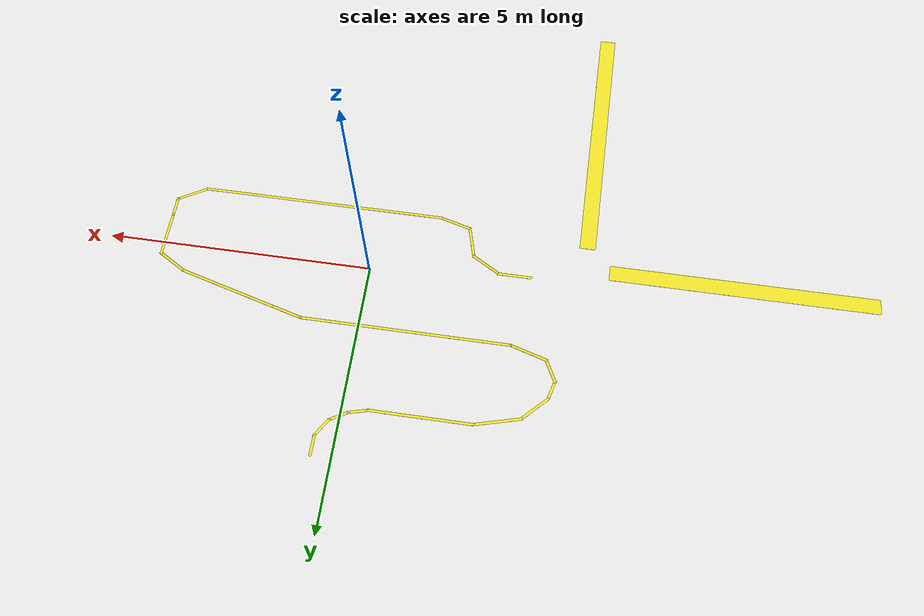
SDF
<?xml version='1.0'?>
<sdf version='1.7'>
  <model name='path'>
    <link name='Line_11'>
      <pose>-4 -6 0 0 0 -1.5708</pose>
      <self_collide>0</self_collide>
      <enable_wind>0</enable_wind>
      <kinematic>0</kinematic>
      <gravity>1</gravity>
      <inertial>
        <mass>1</mass>
        <pose>0 -0.04 0 0 -0 0</pose>
        <inertia>
          <ixx>1</ixx>
          <ixy>0</ixy>
          <ixz>0</ixz>
          <iyy>1</iyy>
          <iyz>0</iyz>
          <izz>1</izz>
        </inertia>
      </inertial>
      <visual name='Line_11_Visual'>
        <pose>-2.5 0 0 0 -0 0</pose>
        <geometry>
          <box>
            <size>5 0.3 0.001</size>
          </box>
        </geometry>
        <material>
          <script>
            <uri>file://media/materials/scripts/gazebo.material</uri>
            <name>Gazebo/Yellow</name>
          </script>
          <shader type='pixel'>
            <normal_map>__default__</normal_map>
          </shader>
          <ambient>1 1 0 1</ambient>
          <diffuse>1 1 0 1</diffuse>
          <emissive>0 0 0 1</emissive>
        </material>
        <meta>
          <layer>0</layer>
        </meta>
        <transparency>0</transparency>
        <cast_shadows>1</cast_shadows>
      </visual>
      <collision name='Line_11_Collision'>
        <laser_retro>0</laser_retro>
        <max_contacts>10</max_contacts>
        <pose>0 0 0.0015 0 -0 0</pose>
        <geometry>
          <box>
            <size>0.05 2.5 1</size>
          </box>
        </geometry>
        <surface>
          <friction>
            <ode>
              <mu>100</mu>
              <mu2>50</mu2>
              <fdir1>0 0 0</fdir1>
              <slip1>0</slip1>
              <slip2>0</slip2>
            </ode>
            <torsional>
              <coefficient>1</coefficient>
              <patch_radius>0</patch_radius>
              <surface_radius>0</surface_radius>
              <use_patch_radius>1</use_patch_radius>
              <ode>
                <slip>0</slip>
              </ode>
            </torsional>
          </friction>
          <bounce>
            <restitution_coefficient>0</restitution_coefficient>
            <threshold>1e+06</threshold>
          </bounce>
          <contact>
            <collide_without_contact>0</collide_without_contact>
            <collide_without_contact_bitmask>1</collide_without_contact_bitmask>
            <collide_bitmask>1</collide_bitmask>
            <ode>
              <soft_cfm>0</soft_cfm>
              <soft_erp>0.2</soft_erp>
              <kp>1e+13</kp>
              <kd>1</kd>
              <max_vel>0.01</max_vel>
              <min_depth>0</min_depth>
            </ode>
            <bullet>
              <split_impulse>1</split_impulse>
              <split_impulse_penetration_threshold>-0.01</split_impulse_penetration_threshold>
              <soft_cfm>0</soft_cfm>
              <soft_erp>0.2</soft_erp>
              <kp>1e+13</kp>
              <kd>1</kd>
            </bullet>
          </contact>
        </surface>
      </collision>
    </link>
    <link name='Line_13'>
      <pose>-4.45 -0.55 0 0 -0 0</pose>
      <self_collide>0</self_collide>
      <enable_wind>0</enable_wind>
      <kinematic>0</kinematic>
      <gravity>1</gravity>
      <inertial>
        <mass>1</mass>
        <pose>0 0 0 0 -0 0</pose>
        <inertia>
          <ixx>1</ixx>
          <ixy>0</ixy>
          <ixz>0</ixz>
          <iyy>1</iyy>
          <iyz>0</iyz>
          <izz>1</izz>
        </inertia>
      </inertial>
      <visual name='Line_13_Visual'>
        <pose>-2.5 0 0 0 -0 0</pose>
        <geometry>
          <box>
            <size>5 0.3 0.001</size>
          </box>
        </geometry>
        <material>
          <script>
            <uri>file://media/materials/scripts/gazebo.material</uri>
            <name>Gazebo/Yellow</name>
          </script>
          <shader type='pixel'>
            <normal_map>__default__</normal_map>
          </shader>
          <ambient>1 1 0 1</ambient>
          <diffuse>1 1 0 1</diffuse>
          <emissive>0 0 0 1</emissive>
        </material>
        <meta>
          <layer>0</layer>
        </meta>
        <transparency>0</transparency>
        <cast_shadows>1</cast_shadows>
      </visual>
      <collision name='Line_13_Collision'>
        <laser_retro>0</laser_retro>
        <max_contacts>10</max_contacts>
        <pose>0 0 0.0005 0 -0 0</pose>
        <geometry>
          <box>
            <size>0.05 1.40411 1</size>
          </box>
        </geometry>
        <surface>
          <friction>
            <ode>
              <mu>100</mu>
              <mu2>50</mu2>
              <fdir1>0 0 0</fdir1>
              <slip1>0</slip1>
              <slip2>0</slip2>
            </ode>
            <torsional>
              <coefficient>1</coefficient>
              <patch_radius>0</patch_radius>
              <surface_radius>0</surface_radius>
              <use_patch_radius>1</use_patch_radius>
              <ode>
                <slip>0</slip>
              </ode>
            </torsional>
          </friction>
          <bounce>
            <restitution_coefficient>0</restitution_coefficient>
            <threshold>1e+06</threshold>
          </bounce>
          <contact>
            <collide_without_contact>0</collide_without_contact>
            <collide_without_contact_bitmask>1</collide_without_contact_bitmask>
            <collide_bitmask>1</collide_bitmask>
            <ode>
              <soft_cfm>0</soft_cfm>
              <soft_erp>0.2</soft_erp>
              <kp>1e+13</kp>
              <kd>1</kd>
              <max_vel>0.01</max_vel>
              <min_depth>0</min_depth>
            </ode>
            <bullet>
              <split_impulse>1</split_impulse>
              <split_impulse_penetration_threshold>-0.01</split_impulse_penetration_threshold>
              <soft_cfm>0</soft_cfm>
              <soft_erp>0.2</soft_erp>
              <kp>1e+13</kp>
              <kd>1</kd>
            </bullet>
          </contact>
        </surface>
      </collision>
    </link>
    <link name='Line_14'>
      <pose>-2.70386 -0.244509 0 0 -0 0</pose>
      <self_collide>0</self_collide>
      <enable_wind>0</enable_wind>
      <kinematic>0</kinematic>
      <visual name='Line_14_Visual'>
        <pose>0 0 0.0005 0 -0 0</pose>
        <geometry>
          <box>
            <size>0.65 0.05 0.001</size>
          </box>
        </geometry>
        <material>
          <script>
            <uri>file://media/materials/scripts/gazebo.material</uri>
            <name>Gazebo/Yellow</name>
          </script>
          <shader type='pixel'/>
        </material>
        <meta>
          <layer>0</layer>
        </meta>
        <transparency>0</transparency>
        <cast_shadows>1</cast_shadows>
      </visual>
      <collision name='Line_14_Collision'>
        <laser_retro>0</laser_retro>
        <max_contacts>10</max_contacts>
        <pose>0 0 0.0005 0 -0 0</pose>
        <geometry>
          <box>
            <size>0.05 0.65 1</size>
          </box>
        </geometry>
        <surface>
          <friction>
            <ode>
              <mu>100</mu>
              <mu2>50</mu2>
              <fdir1>0 0 0</fdir1>
              <slip1>0</slip1>
              <slip2>0</slip2>
            </ode>
            <torsional>
              <coefficient>1</coefficient>
              <patch_radius>0</patch_radius>
              <surface_radius>0</surface_radius>
              <use_patch_radius>1</use_patch_radius>
              <ode>
                <slip>0</slip>
              </ode>
            </torsional>
          </friction>
          <bounce>
            <restitution_coefficient>0</restitution_coefficient>
            <threshold>1e+06</threshold>
          </bounce>
          <contact>
            <collide_without_contact>0</collide_without_contact>
            <collide_without_contact_bitmask>1</collide_without_contact_bitmask>
            <collide_bitmask>1</collide_bitmask>
            <ode>
              <soft_cfm>0</soft_cfm>
              <soft_erp>0.2</soft_erp>
              <kp>1e+13</kp>
              <kd>1</kd>
              <max_vel>0.01</max_vel>
              <min_depth>0</min_depth>
            </ode>
            <bullet>
              <split_impulse>1</split_impulse>
              <split_impulse_penetration_threshold>-0.01</split_impulse_penetration_threshold>
              <soft_cfm>0</soft_cfm>
              <soft_erp>0.2</soft_erp>
              <kp>1e+13</kp>
              <kd>1</kd>
            </bullet>
          </contact>
        </surface>
      </collision>
    </link>
    <link name='Line_20'>
      <pose>-2.14686 -0.394509 0 0 0 -0.528316</pose>
      <self_collide>0</self_collide>
      <enable_wind>0</enable_wind>
      <kinematic>0</kinematic>
      <visual name='Line_20_Visual'>
        <pose>0 0 0.0005 0 -0 0</pose>
        <geometry>
          <box>
            <size>0.645529 0.05 0.001</size>
          </box>
        </geometry>
        <material>
          <script>
            <uri>file://media/materials/scripts/gazebo.material</uri>
            <name>Gazebo/Yellow</name>
          </script>
          <shader type='pixel'/>
        </material>
        <meta>
          <layer>0</layer>
        </meta>
        <transparency>0</transparency>
        <cast_shadows>1</cast_shadows>
      </visual>
      <collision name='Line_20_Collision'>
        <laser_retro>0</laser_retro>
        <max_contacts>10</max_contacts>
        <pose>0 0 0.0005 0 -0 0</pose>
        <geometry>
          <box>
            <size>0.05 0.645529 1</size>
          </box>
        </geometry>
        <surface>
          <friction>
            <ode>
              <mu>100</mu>
              <mu2>50</mu2>
              <fdir1>0 0 0</fdir1>
              <slip1>0</slip1>
              <slip2>0</slip2>
            </ode>
            <torsional>
              <coefficient>1</coefficient>
              <patch_radius>0</patch_radius>
              <surface_radius>0</surface_radius>
              <use_patch_radius>1</use_patch_radius>
              <ode>
                <slip>0</slip>
              </ode>
            </torsional>
          </friction>
          <bounce>
            <restitution_coefficient>0</restitution_coefficient>
            <threshold>1e+06</threshold>
          </bounce>
          <contact>
            <collide_without_contact>0</collide_without_contact>
            <collide_without_contact_bitmask>1</collide_without_contact_bitmask>
            <collide_bitmask>1</collide_bitmask>
            <ode>
              <soft_cfm>0</soft_cfm>
              <soft_erp>0.2</soft_erp>
              <kp>1e+13</kp>
              <kd>1</kd>
              <max_vel>0.01</max_vel>
              <min_depth>0</min_depth>
            </ode>
            <bullet>
              <split_impulse>1</split_impulse>
              <split_impulse_penetration_threshold>-0.01</split_impulse_penetration_threshold>
              <soft_cfm>0</soft_cfm>
              <soft_erp>0.2</soft_erp>
              <kp>1e+13</kp>
              <kd>1</kd>
            </bullet>
          </contact>
        </surface>
      </collision>
    </link>
    <link name='Line_21'>
      <pose>-1.81186 -0.834509 0 0 0 -1.30805</pose>
      <self_collide>0</self_collide>
      <enable_wind>0</enable_wind>
      <kinematic>0</kinematic>
      <visual name='Line_21_Visual'>
        <pose>0 0 0.0005 0 -0 0</pose>
        <geometry>
          <box>
            <size>0.650446 0.05 0.001</size>
          </box>
        </geometry>
        <material>
          <script>
            <uri>file://media/materials/scripts/gazebo.material</uri>
            <name>Gazebo/Yellow</name>
          </script>
          <shader type='pixel'/>
        </material>
        <meta>
          <layer>0</layer>
        </meta>
        <transparency>0</transparency>
        <cast_shadows>1</cast_shadows>
      </visual>
      <collision name='Line_21_Collision'>
        <laser_retro>0</laser_retro>
        <max_contacts>10</max_contacts>
        <pose>0 0 0.0005 0 -0 0</pose>
        <geometry>
          <box>
            <size>0.05 0.650446 1</size>
          </box>
        </geometry>
        <surface>
          <friction>
            <ode>
              <mu>100</mu>
              <mu2>50</mu2>
              <fdir1>0 0 0</fdir1>
              <slip1>0</slip1>
              <slip2>0</slip2>
            </ode>
            <torsional>
              <coefficient>1</coefficient>
              <patch_radius>0</patch_radius>
              <surface_radius>0</surface_radius>
              <use_patch_radius>1</use_patch_radius>
              <ode>
                <slip>0</slip>
              </ode>
            </torsional>
          </friction>
          <bounce>
            <restitution_coefficient>0</restitution_coefficient>
            <threshold>1e+06</threshold>
          </bounce>
          <contact>
            <collide_without_contact>0</collide_without_contact>
            <collide_without_contact_bitmask>1</collide_without_contact_bitmask>
            <collide_bitmask>1</collide_bitmask>
            <ode>
              <soft_cfm>0</soft_cfm>
              <soft_erp>0.2</soft_erp>
              <kp>1e+13</kp>
              <kd>1</kd>
              <max_vel>0.01</max_vel>
              <min_depth>0</min_depth>
            </ode>
            <bullet>
              <split_impulse>1</split_impulse>
              <split_impulse_penetration_threshold>-0.01</split_impulse_penetration_threshold>
              <soft_cfm>0</soft_cfm>
              <soft_erp>0.2</soft_erp>
              <kp>1e+13</kp>
              <kd>1</kd>
            </bullet>
          </contact>
        </surface>
      </collision>
    </link>
    <link name='Line_22'>
      <pose>-1.44436 -1.20201 0 0 0 -0.26157</pose>
      <self_collide>0</self_collide>
      <enable_wind>0</enable_wind>
      <kinematic>0</kinematic>
      <visual name='Line_22_Visual'>
        <pose>0 0 0.0005 0 -0 0</pose>
        <geometry>
          <box>
            <size>0.649508 0.05 0.001</size>
          </box>
        </geometry>
        <material>
          <script>
            <uri>file://media/materials/scripts/gazebo.material</uri>
            <name>Gazebo/Yellow</name>
          </script>
          <shader type='pixel'/>
        </material>
        <meta>
          <layer>0</layer>
        </meta>
        <transparency>0</transparency>
        <cast_shadows>1</cast_shadows>
      </visual>
      <collision name='Line_22_Collision'>
        <laser_retro>0</laser_retro>
        <max_contacts>10</max_contacts>
        <pose>0 0 0.0005 0 -0 0</pose>
        <geometry>
          <box>
            <size>0.05 0.649508 1</size>
          </box>
        </geometry>
        <surface>
          <friction>
            <ode>
              <mu>100</mu>
              <mu2>50</mu2>
              <fdir1>0 0 0</fdir1>
              <slip1>0</slip1>
              <slip2>0</slip2>
            </ode>
            <torsional>
              <coefficient>1</coefficient>
              <patch_radius>0</patch_radius>
              <surface_radius>0</surface_radius>
              <use_patch_radius>1</use_patch_radius>
              <ode>
                <slip>0</slip>
              </ode>
            </torsional>
          </friction>
          <bounce>
            <restitution_coefficient>0</restitution_coefficient>
            <threshold>1e+06</threshold>
          </bounce>
          <contact>
            <collide_without_contact>0</collide_without_contact>
            <collide_without_contact_bitmask>1</collide_without_contact_bitmask>
            <collide_bitmask>1</collide_bitmask>
            <ode>
              <soft_cfm>0</soft_cfm>
              <soft_erp>0.2</soft_erp>
              <kp>1e+13</kp>
              <kd>1</kd>
              <max_vel>0.01</max_vel>
              <min_depth>0</min_depth>
            </ode>
            <bullet>
              <split_impulse>1</split_impulse>
              <split_impulse_penetration_threshold>-0.01</split_impulse_penetration_threshold>
              <soft_cfm>0</soft_cfm>
              <soft_erp>0.2</soft_erp>
              <kp>1e+13</kp>
              <kd>1</kd>
            </bullet>
          </contact>
        </surface>
      </collision>
    </link>
    <link name='Line_23'>
      <pose>1.14514 -1.27951 0 0 -0 0</pose>
      <self_collide>0</self_collide>
      <enable_wind>0</enable_wind>
      <kinematic>0</kinematic>
      <visual name='Line_23_Visual'>
        <pose>0 0 0.0005 0 -0 0</pose>
        <geometry>
          <box>
            <size>4.65006 0.05 0.001</size>
          </box>
        </geometry>
        <material>
          <script>
            <uri>file://media/materials/scripts/gazebo.material</uri>
            <name>Gazebo/Yellow</name>
          </script>
          <shader type='pixel'/>
        </material>
        <meta>
          <layer>0</layer>
        </meta>
        <transparency>0</transparency>
        <cast_shadows>1</cast_shadows>
      </visual>
      <collision name='Line_23_Collision'>
        <laser_retro>0</laser_retro>
        <max_contacts>10</max_contacts>
        <pose>0 0 0.0005 0 -0 0</pose>
        <geometry>
          <box>
            <size>0.05 4.65006 1</size>
          </box>
        </geometry>
        <surface>
          <friction>
            <ode>
              <mu>100</mu>
              <mu2>50</mu2>
              <fdir1>0 0 0</fdir1>
              <slip1>0</slip1>
              <slip2>0</slip2>
            </ode>
            <torsional>
              <coefficient>1</coefficient>
              <patch_radius>0</patch_radius>
              <surface_radius>0</surface_radius>
              <use_patch_radius>1</use_patch_radius>
              <ode>
                <slip>0</slip>
              </ode>
            </torsional>
          </friction>
          <bounce>
            <restitution_coefficient>0</restitution_coefficient>
            <threshold>1e+06</threshold>
          </bounce>
          <contact>
            <collide_without_contact>0</collide_without_contact>
            <collide_without_contact_bitmask>1</collide_without_contact_bitmask>
            <collide_bitmask>1</collide_bitmask>
            <ode>
              <soft_cfm>0</soft_cfm>
              <soft_erp>0.2</soft_erp>
              <kp>1e+13</kp>
              <kd>1</kd>
              <max_vel>0.01</max_vel>
              <min_depth>0</min_depth>
            </ode>
            <bullet>
              <split_impulse>1</split_impulse>
              <split_impulse_penetration_threshold>-0.01</split_impulse_penetration_threshold>
              <soft_cfm>0</soft_cfm>
              <soft_erp>0.2</soft_erp>
              <kp>1e+13</kp>
              <kd>1</kd>
            </bullet>
          </contact>
        </surface>
      </collision>
    </link>
    <link name='Line_24'>
      <pose>3.70514 -1.12951 0 0 -0 0.523278</pose>
      <self_collide>0</self_collide>
      <enable_wind>0</enable_wind>
      <kinematic>0</kinematic>
      <visual name='Line_24_Visual'>
        <pose>0 0 0.0005 0 -0 0</pose>
        <geometry>
          <box>
            <size>0.649922 0.05 0.001</size>
          </box>
        </geometry>
        <material>
          <script>
            <uri>file://media/materials/scripts/gazebo.material</uri>
            <name>Gazebo/Yellow</name>
          </script>
          <shader type='pixel'/>
        </material>
        <meta>
          <layer>0</layer>
        </meta>
        <transparency>0</transparency>
        <cast_shadows>1</cast_shadows>
      </visual>
      <collision name='Line_24_Collision'>
        <laser_retro>0</laser_retro>
        <max_contacts>10</max_contacts>
        <pose>0 0 0.0005 0 -0 0</pose>
        <geometry>
          <box>
            <size>0.05 0.649922 1</size>
          </box>
        </geometry>
        <surface>
          <friction>
            <ode>
              <mu>100</mu>
              <mu2>50</mu2>
              <fdir1>0 0 0</fdir1>
              <slip1>0</slip1>
              <slip2>0</slip2>
            </ode>
            <torsional>
              <coefficient>1</coefficient>
              <patch_radius>0</patch_radius>
              <surface_radius>0</surface_radius>
              <use_patch_radius>1</use_patch_radius>
              <ode>
                <slip>0</slip>
              </ode>
            </torsional>
          </friction>
          <bounce>
            <restitution_coefficient>0</restitution_coefficient>
            <threshold>1e+06</threshold>
          </bounce>
          <contact>
            <collide_without_contact>0</collide_without_contact>
            <collide_without_contact_bitmask>1</collide_without_contact_bitmask>
            <collide_bitmask>1</collide_bitmask>
            <ode>
              <soft_cfm>0</soft_cfm>
              <soft_erp>0.2</soft_erp>
              <kp>1e+13</kp>
              <kd>1</kd>
              <max_vel>0.01</max_vel>
              <min_depth>0</min_depth>
            </ode>
            <bullet>
              <split_impulse>1</split_impulse>
              <split_impulse_penetration_threshold>-0.01</split_impulse_penetration_threshold>
              <soft_cfm>0</soft_cfm>
              <soft_erp>0.2</soft_erp>
              <kp>1e+13</kp>
              <kd>1</kd>
            </bullet>
          </contact>
        </surface>
      </collision>
    </link>
    <link name='Line_25'>
      <pose>3.96514 -0.804509 0 0 -0 1.5708</pose>
      <self_collide>0</self_collide>
      <enable_wind>0</enable_wind>
      <kinematic>0</kinematic>
      <visual name='Line_25_Visual'>
        <pose>0 0 0.0005 0 -0 0</pose>
        <geometry>
          <box>
            <size>0.399747 0.05 0.001</size>
          </box>
        </geometry>
        <material>
          <script>
            <uri>file://media/materials/scripts/gazebo.material</uri>
            <name>Gazebo/Yellow</name>
          </script>
          <shader type='pixel'/>
        </material>
        <meta>
          <layer>0</layer>
        </meta>
        <transparency>0</transparency>
        <cast_shadows>1</cast_shadows>
      </visual>
      <collision name='Line_25_Collision'>
        <laser_retro>0</laser_retro>
        <max_contacts>10</max_contacts>
        <pose>0 0 0.0005 0 -0 0</pose>
        <geometry>
          <box>
            <size>0.05 0.399747 1</size>
          </box>
        </geometry>
        <surface>
          <friction>
            <ode>
              <mu>100</mu>
              <mu2>50</mu2>
              <fdir1>0 0 0</fdir1>
              <slip1>0</slip1>
              <slip2>0</slip2>
            </ode>
            <torsional>
              <coefficient>1</coefficient>
              <patch_radius>0</patch_radius>
              <surface_radius>0</surface_radius>
              <use_patch_radius>1</use_patch_radius>
              <ode>
                <slip>0</slip>
              </ode>
            </torsional>
          </friction>
          <bounce>
            <restitution_coefficient>0</restitution_coefficient>
            <threshold>1e+06</threshold>
          </bounce>
          <contact>
            <collide_without_contact>0</collide_without_contact>
            <collide_without_contact_bitmask>1</collide_without_contact_bitmask>
            <collide_bitmask>1</collide_bitmask>
            <ode>
              <soft_cfm>0</soft_cfm>
              <soft_erp>0.2</soft_erp>
              <kp>1e+13</kp>
              <kd>1</kd>
              <max_vel>0.01</max_vel>
              <min_depth>0</min_depth>
            </ode>
            <bullet>
              <split_impulse>1</split_impulse>
              <split_impulse_penetration_threshold>-0.01</split_impulse_penetration_threshold>
              <soft_cfm>0</soft_cfm>
              <soft_erp>0.2</soft_erp>
              <kp>1e+13</kp>
              <kd>1</kd>
            </bullet>
          </contact>
        </surface>
      </collision>
    </link>
    <link name='Line_26'>
      <pose>3.96514 -0.204509 0 0 -0 1.5708</pose>
      <self_collide>0</self_collide>
      <enable_wind>0</enable_wind>
      <kinematic>0</kinematic>
      <visual name='Line_26_Visual'>
        <pose>0 0 0.0005 0 -0 0</pose>
        <geometry>
          <box>
            <size>0.899747 0.05 0.001</size>
          </box>
        </geometry>
        <material>
          <script>
            <uri>file://media/materials/scripts/gazebo.material</uri>
            <name>Gazebo/Yellow</name>
          </script>
          <shader type='pixel'/>
        </material>
        <meta>
          <layer>0</layer>
        </meta>
        <transparency>0</transparency>
        <cast_shadows>1</cast_shadows>
      </visual>
      <collision name='Line_26_Collision'>
        <laser_retro>0</laser_retro>
        <max_contacts>10</max_contacts>
        <pose>0 0 0.0005 0 -0 0</pose>
        <geometry>
          <box>
            <size>0.05 0.899747 1</size>
          </box>
        </geometry>
        <surface>
          <friction>
            <ode>
              <mu>100</mu>
              <mu2>50</mu2>
              <fdir1>0 0 0</fdir1>
              <slip1>0</slip1>
              <slip2>0</slip2>
            </ode>
            <torsional>
              <coefficient>1</coefficient>
              <patch_radius>0</patch_radius>
              <surface_radius>0</surface_radius>
              <use_patch_radius>1</use_patch_radius>
              <ode>
                <slip>0</slip>
              </ode>
            </torsional>
          </friction>
          <bounce>
            <restitution_coefficient>0</restitution_coefficient>
            <threshold>1e+06</threshold>
          </bounce>
          <contact>
            <collide_without_contact>0</collide_without_contact>
            <collide_without_contact_bitmask>1</collide_without_contact_bitmask>
            <collide_bitmask>1</collide_bitmask>
            <ode>
              <soft_cfm>0</soft_cfm>
              <soft_erp>0.2</soft_erp>
              <kp>1e+13</kp>
              <kd>1</kd>
              <max_vel>0.01</max_vel>
              <min_depth>0</min_depth>
            </ode>
            <bullet>
              <split_impulse>1</split_impulse>
              <split_impulse_penetration_threshold>-0.01</split_impulse_penetration_threshold>
              <soft_cfm>0</soft_cfm>
              <soft_erp>0.2</soft_erp>
              <kp>1e+13</kp>
              <kd>1</kd>
            </bullet>
          </contact>
        </surface>
      </collision>
    </link>
    <link name='Line_27'>
      <pose>3.70514 0.370491 0 0 -0 2.61831</pose>
      <self_collide>0</self_collide>
      <enable_wind>0</enable_wind>
      <kinematic>0</kinematic>
      <visual name='Line_27_Visual'>
        <pose>0 0 0.0005 0 -0 0</pose>
        <geometry>
          <box>
            <size>0.650158 0.05 0.001</size>
          </box>
        </geometry>
        <material>
          <script>
            <uri>file://media/materials/scripts/gazebo.material</uri>
            <name>Gazebo/Yellow</name>
          </script>
          <shader type='pixel'/>
        </material>
        <meta>
          <layer>0</layer>
        </meta>
        <transparency>0</transparency>
        <cast_shadows>1</cast_shadows>
      </visual>
      <collision name='Line_27_Collision'>
        <laser_retro>0</laser_retro>
        <max_contacts>10</max_contacts>
        <pose>0 0 0.0005 0 -0 0</pose>
        <geometry>
          <box>
            <size>0.05 0.650158 1</size>
          </box>
        </geometry>
        <surface>
          <friction>
            <ode>
              <mu>100</mu>
              <mu2>50</mu2>
              <fdir1>0 0 0</fdir1>
              <slip1>0</slip1>
              <slip2>0</slip2>
            </ode>
            <torsional>
              <coefficient>1</coefficient>
              <patch_radius>0</patch_radius>
              <surface_radius>0</surface_radius>
              <use_patch_radius>1</use_patch_radius>
              <ode>
                <slip>0</slip>
              </ode>
            </torsional>
          </friction>
          <bounce>
            <restitution_coefficient>0</restitution_coefficient>
            <threshold>1e+06</threshold>
          </bounce>
          <contact>
            <collide_without_contact>0</collide_without_contact>
            <collide_without_contact_bitmask>1</collide_without_contact_bitmask>
            <collide_bitmask>1</collide_bitmask>
            <ode>
              <soft_cfm>0</soft_cfm>
              <soft_erp>0.2</soft_erp>
              <kp>1e+13</kp>
              <kd>1</kd>
              <max_vel>0.01</max_vel>
              <min_depth>0</min_depth>
            </ode>
            <bullet>
              <split_impulse>1</split_impulse>
              <split_impulse_penetration_threshold>-0.01</split_impulse_penetration_threshold>
              <soft_cfm>0</soft_cfm>
              <soft_erp>0.2</soft_erp>
              <kp>1e+13</kp>
              <kd>1</kd>
            </bullet>
          </contact>
        </surface>
      </collision>
    </link>
    <link name='Line_28'>
      <pose>2.55164 0.759991 0 0 -0 2.8797</pose>
      <self_collide>0</self_collide>
      <enable_wind>0</enable_wind>
      <kinematic>0</kinematic>
      <visual name='Line_28_Visual'>
        <pose>0 0 0.0005 0 -0 0</pose>
        <geometry>
          <box>
            <size>1.89988 0.05 0.001</size>
          </box>
        </geometry>
        <material>
          <script>
            <uri>file://media/materials/scripts/gazebo.material</uri>
            <name>Gazebo/Yellow</name>
          </script>
          <shader type='pixel'/>
        </material>
        <meta>
          <layer>0</layer>
        </meta>
        <transparency>0</transparency>
        <cast_shadows>1</cast_shadows>
      </visual>
      <collision name='Line_28_Collision'>
        <laser_retro>0</laser_retro>
        <max_contacts>10</max_contacts>
        <pose>0 0 0.0005 0 -0 0</pose>
        <geometry>
          <box>
            <size>0.05 1.89988 1</size>
          </box>
        </geometry>
        <surface>
          <friction>
            <ode>
              <mu>100</mu>
              <mu2>50</mu2>
              <fdir1>0 0 0</fdir1>
              <slip1>0</slip1>
              <slip2>0</slip2>
            </ode>
            <torsional>
              <coefficient>1</coefficient>
              <patch_radius>0</patch_radius>
              <surface_radius>0</surface_radius>
              <use_patch_radius>1</use_patch_radius>
              <ode>
                <slip>0</slip>
              </ode>
            </torsional>
          </friction>
          <bounce>
            <restitution_coefficient>0</restitution_coefficient>
            <threshold>1e+06</threshold>
          </bounce>
          <contact>
            <collide_without_contact>0</collide_without_contact>
            <collide_without_contact_bitmask>1</collide_without_contact_bitmask>
            <collide_bitmask>1</collide_bitmask>
            <ode>
              <soft_cfm>0</soft_cfm>
              <soft_erp>0.2</soft_erp>
              <kp>1e+13</kp>
              <kd>1</kd>
              <max_vel>0.01</max_vel>
              <min_depth>0</min_depth>
            </ode>
            <bullet>
              <split_impulse>1</split_impulse>
              <split_impulse_penetration_threshold>-0.01</split_impulse_penetration_threshold>
              <soft_cfm>0</soft_cfm>
              <soft_erp>0.2</soft_erp>
              <kp>1e+13</kp>
              <kd>1</kd>
            </bullet>
          </contact>
        </surface>
      </collision>
    </link>
    <link name='Line_29'>
      <pose>1.36864 1.07699 0 0 -0 2.88002</pose>
      <self_collide>0</self_collide>
      <enable_wind>0</enable_wind>
      <kinematic>0</kinematic>
      <visual name='Line_29_Visual'>
        <pose>0 0 0.0005 0 -0 0</pose>
        <geometry>
          <box>
            <size>0.649797 0.05 0.001</size>
          </box>
        </geometry>
        <material>
          <script>
            <uri>file://media/materials/scripts/gazebo.material</uri>
            <name>Gazebo/Yellow</name>
          </script>
          <shader type='pixel'/>
        </material>
        <meta>
          <layer>0</layer>
        </meta>
        <transparency>0</transparency>
        <cast_shadows>1</cast_shadows>
      </visual>
      <collision name='Line_29_Collision'>
        <laser_retro>0</laser_retro>
        <max_contacts>10</max_contacts>
        <pose>0 0 0.0005 0 -0 0</pose>
        <geometry>
          <box>
            <size>0.05 0.649797 1</size>
          </box>
        </geometry>
        <surface>
          <friction>
            <ode>
              <mu>100</mu>
              <mu2>50</mu2>
              <fdir1>0 0 0</fdir1>
              <slip1>0</slip1>
              <slip2>0</slip2>
            </ode>
            <torsional>
              <coefficient>1</coefficient>
              <patch_radius>0</patch_radius>
              <surface_radius>0</surface_radius>
              <use_patch_radius>1</use_patch_radius>
              <ode>
                <slip>0</slip>
              </ode>
            </torsional>
          </friction>
          <bounce>
            <restitution_coefficient>0</restitution_coefficient>
            <threshold>1e+06</threshold>
          </bounce>
          <contact>
            <collide_without_contact>0</collide_without_contact>
            <collide_without_contact_bitmask>1</collide_without_contact_bitmask>
            <collide_bitmask>1</collide_bitmask>
            <ode>
              <soft_cfm>0</soft_cfm>
              <soft_erp>0.2</soft_erp>
              <kp>1e+13</kp>
              <kd>1</kd>
              <max_vel>0.01</max_vel>
              <min_depth>0</min_depth>
            </ode>
            <bullet>
              <split_impulse>1</split_impulse>
              <split_impulse_penetration_threshold>-0.01</split_impulse_penetration_threshold>
              <soft_cfm>0</soft_cfm>
              <soft_erp>0.2</soft_erp>
              <kp>1e+13</kp>
              <kd>1</kd>
            </bullet>
          </contact>
        </surface>
      </collision>
    </link>
    <link name='Line_30'>
      <pose>-0.855858 1.15449 0 0 -0 3.14159</pose>
      <self_collide>0</self_collide>
      <enable_wind>0</enable_wind>
      <kinematic>0</kinematic>
      <visual name='Line_30_Visual'>
        <pose>0 0 0.0005 0 -0 0</pose>
        <geometry>
          <box>
            <size>3.92046 0.05 0.001</size>
          </box>
        </geometry>
        <material>
          <script>
            <uri>file://media/materials/scripts/gazebo.material</uri>
            <name>Gazebo/Yellow</name>
          </script>
          <shader type='pixel'/>
        </material>
        <meta>
          <layer>0</layer>
        </meta>
        <transparency>0</transparency>
        <cast_shadows>1</cast_shadows>
      </visual>
      <collision name='Line_30_Collision'>
        <laser_retro>0</laser_retro>
        <max_contacts>10</max_contacts>
        <pose>0 0 0.0005 0 -0 0</pose>
        <geometry>
          <box>
            <size>0.05 3.92046 1</size>
          </box>
        </geometry>
        <surface>
          <friction>
            <ode>
              <mu>100</mu>
              <mu2>50</mu2>
              <fdir1>0 0 0</fdir1>
              <slip1>0</slip1>
              <slip2>0</slip2>
            </ode>
            <torsional>
              <coefficient>1</coefficient>
              <patch_radius>0</patch_radius>
              <surface_radius>0</surface_radius>
              <use_patch_radius>1</use_patch_radius>
              <ode>
                <slip>0</slip>
              </ode>
            </torsional>
          </friction>
          <bounce>
            <restitution_coefficient>0</restitution_coefficient>
            <threshold>1e+06</threshold>
          </bounce>
          <contact>
            <collide_without_contact>0</collide_without_contact>
            <collide_without_contact_bitmask>1</collide_without_contact_bitmask>
            <collide_bitmask>1</collide_bitmask>
            <ode>
              <soft_cfm>0</soft_cfm>
              <soft_erp>0.2</soft_erp>
              <kp>1e+13</kp>
              <kd>1</kd>
              <max_vel>0.01</max_vel>
              <min_depth>0</min_depth>
            </ode>
            <bullet>
              <split_impulse>1</split_impulse>
              <split_impulse_penetration_threshold>-0.01</split_impulse_penetration_threshold>
              <soft_cfm>0</soft_cfm>
              <soft_erp>0.2</soft_erp>
              <kp>1e+13</kp>
              <kd>1</kd>
            </bullet>
          </contact>
        </surface>
      </collision>
    </link>
    <link name='Line_31'>
      <pose>-3.12586 1.25199 0 0 -0 2.85837</pose>
      <self_collide>0</self_collide>
      <enable_wind>0</enable_wind>
      <kinematic>0</kinematic>
      <visual name='Line_31_Visual'>
        <pose>0 0 0.0005 0 -0 0</pose>
        <geometry>
          <box>
            <size>0.747857 0.05 0.001</size>
          </box>
        </geometry>
        <material>
          <script>
            <uri>file://media/materials/scripts/gazebo.material</uri>
            <name>Gazebo/Yellow</name>
          </script>
          <shader type='pixel'/>
        </material>
        <meta>
          <layer>0</layer>
        </meta>
        <transparency>0</transparency>
        <cast_shadows>1</cast_shadows>
      </visual>
      <collision name='Line_31_Collision'>
        <laser_retro>0</laser_retro>
        <max_contacts>10</max_contacts>
        <pose>0 0 0.0005 0 -0 0</pose>
        <geometry>
          <box>
            <size>0.05 0.747857 1</size>
          </box>
        </geometry>
        <surface>
          <friction>
            <ode>
              <mu>100</mu>
              <mu2>50</mu2>
              <fdir1>0 0 0</fdir1>
              <slip1>0</slip1>
              <slip2>0</slip2>
            </ode>
            <torsional>
              <coefficient>1</coefficient>
              <patch_radius>0</patch_radius>
              <surface_radius>0</surface_radius>
              <use_patch_radius>1</use_patch_radius>
              <ode>
                <slip>0</slip>
              </ode>
            </torsional>
          </friction>
          <bounce>
            <restitution_coefficient>0</restitution_coefficient>
            <threshold>1e+06</threshold>
          </bounce>
          <contact>
            <collide_without_contact>0</collide_without_contact>
            <collide_without_contact_bitmask>1</collide_without_contact_bitmask>
            <collide_bitmask>1</collide_bitmask>
            <ode>
              <soft_cfm>0</soft_cfm>
              <soft_erp>0.2</soft_erp>
              <kp>1e+13</kp>
              <kd>1</kd>
              <max_vel>0.01</max_vel>
              <min_depth>0</min_depth>
            </ode>
            <bullet>
              <split_impulse>1</split_impulse>
              <split_impulse_penetration_threshold>-0.01</split_impulse_penetration_threshold>
              <soft_cfm>0</soft_cfm>
              <soft_erp>0.2</soft_erp>
              <kp>1e+13</kp>
              <kd>1</kd>
            </bullet>
          </contact>
        </surface>
      </collision>
    </link>
    <link name='Line_32'>
      <pose>-3.55986 1.54549 0 0 -0 2.03852</pose>
      <self_collide>0</self_collide>
      <enable_wind>0</enable_wind>
      <kinematic>0</kinematic>
      <visual name='Line_32_Visual'>
        <pose>0 0 0.0005 0 -0 0</pose>
        <geometry>
          <box>
            <size>0.489276 0.05 0.001</size>
          </box>
        </geometry>
        <material>
          <script>
            <uri>file://media/materials/scripts/gazebo.material</uri>
            <name>Gazebo/Yellow</name>
          </script>
          <shader type='pixel'/>
        </material>
        <meta>
          <layer>0</layer>
        </meta>
        <transparency>0</transparency>
        <cast_shadows>1</cast_shadows>
      </visual>
      <collision name='Line_32_Collision'>
        <laser_retro>0</laser_retro>
        <max_contacts>10</max_contacts>
        <pose>0 0 0.0005 0 -0 0</pose>
        <geometry>
          <box>
            <size>0.05 0.489276 1</size>
          </box>
        </geometry>
        <surface>
          <friction>
            <ode>
              <mu>100</mu>
              <mu2>50</mu2>
              <fdir1>0 0 0</fdir1>
              <slip1>0</slip1>
              <slip2>0</slip2>
            </ode>
            <torsional>
              <coefficient>1</coefficient>
              <patch_radius>0</patch_radius>
              <surface_radius>0</surface_radius>
              <use_patch_radius>1</use_patch_radius>
              <ode>
                <slip>0</slip>
              </ode>
            </torsional>
          </friction>
          <bounce>
            <restitution_coefficient>0</restitution_coefficient>
            <threshold>1e+06</threshold>
          </bounce>
          <contact>
            <collide_without_contact>0</collide_without_contact>
            <collide_without_contact_bitmask>1</collide_without_contact_bitmask>
            <collide_bitmask>1</collide_bitmask>
            <ode>
              <soft_cfm>0</soft_cfm>
              <soft_erp>0.2</soft_erp>
              <kp>1e+13</kp>
              <kd>1</kd>
              <max_vel>0.01</max_vel>
              <min_depth>0</min_depth>
            </ode>
            <bullet>
              <split_impulse>1</split_impulse>
              <split_impulse_penetration_threshold>-0.01</split_impulse_penetration_threshold>
              <soft_cfm>0</soft_cfm>
              <soft_erp>0.2</soft_erp>
              <kp>1e+13</kp>
              <kd>1</kd>
            </bullet>
          </contact>
        </surface>
      </collision>
    </link>
    <link name='Line_35'>
      <pose>-3.61336 1.91049 0 0 -0 1.3078</pose>
      <self_collide>0</self_collide>
      <enable_wind>0</enable_wind>
      <kinematic>0</kinematic>
      <visual name='Line_35_Visual'>
        <pose>0 0 0.0005 0 -0 0</pose>
        <geometry>
          <box>
            <size>0.400442 0.05 0.001</size>
          </box>
        </geometry>
        <material>
          <script>
            <uri>file://media/materials/scripts/gazebo.material</uri>
            <name>Gazebo/Yellow</name>
          </script>
          <shader type='pixel'/>
        </material>
        <meta>
          <layer>0</layer>
        </meta>
        <transparency>0</transparency>
        <cast_shadows>1</cast_shadows>
      </visual>
      <collision name='Line_35_Collision'>
        <laser_retro>0</laser_retro>
        <max_contacts>10</max_contacts>
        <pose>0 0 0.0005 0 -0 0</pose>
        <geometry>
          <box>
            <size>0.05 0.400442 1</size>
          </box>
        </geometry>
        <surface>
          <friction>
            <ode>
              <mu>100</mu>
              <mu2>50</mu2>
              <fdir1>0 0 0</fdir1>
              <slip1>0</slip1>
              <slip2>0</slip2>
            </ode>
            <torsional>
              <coefficient>1</coefficient>
              <patch_radius>0</patch_radius>
              <surface_radius>0</surface_radius>
              <use_patch_radius>1</use_patch_radius>
              <ode>
                <slip>0</slip>
              </ode>
            </torsional>
          </friction>
          <bounce>
            <restitution_coefficient>0</restitution_coefficient>
            <threshold>1e+06</threshold>
          </bounce>
          <contact>
            <collide_without_contact>0</collide_without_contact>
            <collide_without_contact_bitmask>1</collide_without_contact_bitmask>
            <collide_bitmask>1</collide_bitmask>
            <ode>
              <soft_cfm>0</soft_cfm>
              <soft_erp>0.2</soft_erp>
              <kp>1e+13</kp>
              <kd>1</kd>
              <max_vel>0.01</max_vel>
              <min_depth>0</min_depth>
            </ode>
            <bullet>
              <split_impulse>1</split_impulse>
              <split_impulse_penetration_threshold>-0.01</split_impulse_penetration_threshold>
              <soft_cfm>0</soft_cfm>
              <soft_erp>0.2</soft_erp>
              <kp>1e+13</kp>
              <kd>1</kd>
            </bullet>
          </contact>
        </surface>
      </collision>
    </link>
    <link name='Line_36'>
      <pose>-3.35586 2.29199 0 0 -0 0.786576</pose>
      <self_collide>0</self_collide>
      <enable_wind>0</enable_wind>
      <kinematic>0</kinematic>
      <visual name='Line_36_Visual'>
        <pose>0 0 0.0005 0 -0 0</pose>
        <geometry>
          <box>
            <size>0.650309 0.05 0.001</size>
          </box>
        </geometry>
        <material>
          <script>
            <uri>file://media/materials/scripts/gazebo.material</uri>
            <name>Gazebo/Yellow</name>
          </script>
          <shader type='pixel'/>
        </material>
        <meta>
          <layer>0</layer>
        </meta>
        <transparency>0</transparency>
        <cast_shadows>1</cast_shadows>
      </visual>
      <collision name='Line_36_Collision'>
        <laser_retro>0</laser_retro>
        <max_contacts>10</max_contacts>
        <pose>0 0 0.0005 0 -0 0</pose>
        <geometry>
          <box>
            <size>0.05 0.650309 1</size>
          </box>
        </geometry>
        <surface>
          <friction>
            <ode>
              <mu>100</mu>
              <mu2>50</mu2>
              <fdir1>0 0 0</fdir1>
              <slip1>0</slip1>
              <slip2>0</slip2>
            </ode>
            <torsional>
              <coefficient>1</coefficient>
              <patch_radius>0</patch_radius>
              <surface_radius>0</surface_radius>
              <use_patch_radius>1</use_patch_radius>
              <ode>
                <slip>0</slip>
              </ode>
            </torsional>
          </friction>
          <bounce>
            <restitution_coefficient>0</restitution_coefficient>
            <threshold>1e+06</threshold>
          </bounce>
          <contact>
            <collide_without_contact>0</collide_without_contact>
            <collide_without_contact_bitmask>1</collide_without_contact_bitmask>
            <collide_bitmask>1</collide_bitmask>
            <ode>
              <soft_cfm>0</soft_cfm>
              <soft_erp>0.2</soft_erp>
              <kp>1e+13</kp>
              <kd>1</kd>
              <max_vel>0.01</max_vel>
              <min_depth>0</min_depth>
            </ode>
            <bullet>
              <split_impulse>1</split_impulse>
              <split_impulse_penetration_threshold>-0.01</split_impulse_penetration_threshold>
              <soft_cfm>0</soft_cfm>
              <soft_erp>0.2</soft_erp>
              <kp>1e+13</kp>
              <kd>1</kd>
            </bullet>
          </contact>
        </surface>
      </collision>
    </link>
    <link name='Line_37'>
      <pose>-2.73336 2.61449 0 0 -0 0.261815</pose>
      <self_collide>0</self_collide>
      <enable_wind>0</enable_wind>
      <kinematic>0</kinematic>
      <visual name='Line_37_Visual'>
        <pose>0 0 0.0005 0 -0 0</pose>
        <geometry>
          <box>
            <size>0.900194 0.05 0.001</size>
          </box>
        </geometry>
        <material>
          <script>
            <uri>file://media/materials/scripts/gazebo.material</uri>
            <name>Gazebo/Yellow</name>
          </script>
          <shader type='pixel'/>
        </material>
        <meta>
          <layer>0</layer>
        </meta>
        <transparency>0</transparency>
        <cast_shadows>1</cast_shadows>
      </visual>
      <collision name='Line_37_Collision'>
        <laser_retro>0</laser_retro>
        <max_contacts>10</max_contacts>
        <pose>0 0 0.0005 0 -0 0</pose>
        <geometry>
          <box>
            <size>0.05 0.900194 1</size>
          </box>
        </geometry>
        <surface>
          <friction>
            <ode>
              <mu>100</mu>
              <mu2>50</mu2>
              <fdir1>0 0 0</fdir1>
              <slip1>0</slip1>
              <slip2>0</slip2>
            </ode>
            <torsional>
              <coefficient>1</coefficient>
              <patch_radius>0</patch_radius>
              <surface_radius>0</surface_radius>
              <use_patch_radius>1</use_patch_radius>
              <ode>
                <slip>0</slip>
              </ode>
            </torsional>
          </friction>
          <bounce>
            <restitution_coefficient>0</restitution_coefficient>
            <threshold>1e+06</threshold>
          </bounce>
          <contact>
            <collide_without_contact>0</collide_without_contact>
            <collide_without_contact_bitmask>1</collide_without_contact_bitmask>
            <collide_bitmask>1</collide_bitmask>
            <ode>
              <soft_cfm>0</soft_cfm>
              <soft_erp>0.2</soft_erp>
              <kp>1e+13</kp>
              <kd>1</kd>
              <max_vel>0.01</max_vel>
              <min_depth>0</min_depth>
            </ode>
            <bullet>
              <split_impulse>1</split_impulse>
              <split_impulse_penetration_threshold>-0.01</split_impulse_penetration_threshold>
              <soft_cfm>0</soft_cfm>
              <soft_erp>0.2</soft_erp>
              <kp>1e+13</kp>
              <kd>1</kd>
            </bullet>
          </contact>
        </surface>
      </collision>
    </link>
    <link name='Line_38'>
      <pose>-1.39786 2.72449 0 0 -0 0</pose>
      <self_collide>0</self_collide>
      <enable_wind>0</enable_wind>
      <kinematic>0</kinematic>
      <visual name='Line_38_Visual'>
        <pose>0 0 0.0005 0 -0 0</pose>
        <geometry>
          <box>
            <size>1.90032 0.05 0.001</size>
          </box>
        </geometry>
        <material>
          <script>
            <uri>file://media/materials/scripts/gazebo.material</uri>
            <name>Gazebo/Yellow</name>
          </script>
          <shader type='pixel'/>
        </material>
        <meta>
          <layer>0</layer>
        </meta>
        <transparency>0</transparency>
        <cast_shadows>1</cast_shadows>
      </visual>
      <collision name='Line_38_Collision'>
        <laser_retro>0</laser_retro>
        <max_contacts>10</max_contacts>
        <pose>0 0 0.0005 0 -0 0</pose>
        <geometry>
          <box>
            <size>0.05 1.90032 1</size>
          </box>
        </geometry>
        <surface>
          <friction>
            <ode>
              <mu>100</mu>
              <mu2>50</mu2>
              <fdir1>0 0 0</fdir1>
              <slip1>0</slip1>
              <slip2>0</slip2>
            </ode>
            <torsional>
              <coefficient>1</coefficient>
              <patch_radius>0</patch_radius>
              <surface_radius>0</surface_radius>
              <use_patch_radius>1</use_patch_radius>
              <ode>
                <slip>0</slip>
              </ode>
            </torsional>
          </friction>
          <bounce>
            <restitution_coefficient>0</restitution_coefficient>
            <threshold>1e+06</threshold>
          </bounce>
          <contact>
            <collide_without_contact>0</collide_without_contact>
            <collide_without_contact_bitmask>1</collide_without_contact_bitmask>
            <collide_bitmask>1</collide_bitmask>
            <ode>
              <soft_cfm>0</soft_cfm>
              <soft_erp>0.2</soft_erp>
              <kp>1e+13</kp>
              <kd>1</kd>
              <max_vel>0.01</max_vel>
              <min_depth>0</min_depth>
            </ode>
            <bullet>
              <split_impulse>1</split_impulse>
              <split_impulse_penetration_threshold>-0.01</split_impulse_penetration_threshold>
              <soft_cfm>0</soft_cfm>
              <soft_erp>0.2</soft_erp>
              <kp>1e+13</kp>
              <kd>1</kd>
            </bullet>
          </contact>
        </surface>
      </collision>
    </link>
    <link name='Line_39'>
      <pose>-0.303858 2.76949 0 0 -0 0.260234</pose>
      <self_collide>0</self_collide>
      <enable_wind>0</enable_wind>
      <kinematic>0</kinematic>
      <visual name='Line_39_Visual'>
        <pose>0 0 0.0005 0 -0 0</pose>
        <geometry>
          <box>
            <size>0.400228 0.05 0.001</size>
          </box>
        </geometry>
        <material>
          <script>
            <uri>file://media/materials/scripts/gazebo.material</uri>
            <name>Gazebo/Yellow</name>
          </script>
          <shader type='pixel'/>
        </material>
        <meta>
          <layer>0</layer>
        </meta>
        <transparency>0</transparency>
        <cast_shadows>1</cast_shadows>
      </visual>
      <collision name='Line_39_Collision'>
        <laser_retro>0</laser_retro>
        <max_contacts>10</max_contacts>
        <pose>0 0 0.0005 0 -0 0</pose>
        <geometry>
          <box>
            <size>0.05 0.400228 1</size>
          </box>
        </geometry>
        <surface>
          <friction>
            <ode>
              <mu>100</mu>
              <mu2>50</mu2>
              <fdir1>0 0 0</fdir1>
              <slip1>0</slip1>
              <slip2>0</slip2>
            </ode>
            <torsional>
              <coefficient>1</coefficient>
              <patch_radius>0</patch_radius>
              <surface_radius>0</surface_radius>
              <use_patch_radius>1</use_patch_radius>
              <ode>
                <slip>0</slip>
              </ode>
            </torsional>
          </friction>
          <bounce>
            <restitution_coefficient>0</restitution_coefficient>
            <threshold>1e+06</threshold>
          </bounce>
          <contact>
            <collide_without_contact>0</collide_without_contact>
            <collide_without_contact_bitmask>1</collide_without_contact_bitmask>
            <collide_bitmask>1</collide_bitmask>
            <ode>
              <soft_cfm>0</soft_cfm>
              <soft_erp>0.2</soft_erp>
              <kp>1e+13</kp>
              <kd>1</kd>
              <max_vel>0.01</max_vel>
              <min_depth>0</min_depth>
            </ode>
            <bullet>
              <split_impulse>1</split_impulse>
              <split_impulse_penetration_threshold>-0.01</split_impulse_penetration_threshold>
              <soft_cfm>0</soft_cfm>
              <soft_erp>0.2</soft_erp>
              <kp>1e+13</kp>
              <kd>1</kd>
            </bullet>
          </contact>
        </surface>
      </collision>
    </link>
    <link name='Line_40'>
      <pose>0.017142 2.90199 0 0 -0 0.522329</pose>
      <self_collide>0</self_collide>
      <enable_wind>0</enable_wind>
      <kinematic>0</kinematic>
      <visual name='Line_40_Visual'>
        <pose>0 0 0.0005 0 -0 0</pose>
        <geometry>
          <box>
            <size>0.400475 0.05 0.001</size>
          </box>
        </geometry>
        <material>
          <script>
            <uri>file://media/materials/scripts/gazebo.material</uri>
            <name>Gazebo/Yellow</name>
          </script>
          <shader type='pixel'/>
        </material>
        <meta>
          <layer>0</layer>
        </meta>
        <transparency>0</transparency>
        <cast_shadows>1</cast_shadows>
      </visual>
      <collision name='Line_40_Collision'>
        <laser_retro>0</laser_retro>
        <max_contacts>10</max_contacts>
        <pose>0 0 0.0005 0 -0 0</pose>
        <geometry>
          <box>
            <size>0.05 0.400475 1</size>
          </box>
        </geometry>
        <surface>
          <friction>
            <ode>
              <mu>100</mu>
              <mu2>50</mu2>
              <fdir1>0 0 0</fdir1>
              <slip1>0</slip1>
              <slip2>0</slip2>
            </ode>
            <torsional>
              <coefficient>1</coefficient>
              <patch_radius>0</patch_radius>
              <surface_radius>0</surface_radius>
              <use_patch_radius>1</use_patch_radius>
              <ode>
                <slip>0</slip>
              </ode>
            </torsional>
          </friction>
          <bounce>
            <restitution_coefficient>0</restitution_coefficient>
            <threshold>1e+06</threshold>
          </bounce>
          <contact>
            <collide_without_contact>0</collide_without_contact>
            <collide_without_contact_bitmask>1</collide_without_contact_bitmask>
            <collide_bitmask>1</collide_bitmask>
            <ode>
              <soft_cfm>0</soft_cfm>
              <soft_erp>0.2</soft_erp>
              <kp>1e+13</kp>
              <kd>1</kd>
              <max_vel>0.01</max_vel>
              <min_depth>0</min_depth>
            </ode>
            <bullet>
              <split_impulse>1</split_impulse>
              <split_impulse_penetration_threshold>-0.01</split_impulse_penetration_threshold>
              <soft_cfm>0</soft_cfm>
              <soft_erp>0.2</soft_erp>
              <kp>1e+13</kp>
              <kd>1</kd>
            </bullet>
          </contact>
        </surface>
      </collision>
    </link>
    <link name='Line_41'>
      <pose>0.266642 3.14449 0 0 -0 1.0093</pose>
      <self_collide>0</self_collide>
      <enable_wind>0</enable_wind>
      <kinematic>0</kinematic>
      <visual name='Line_41_Visual'>
        <pose>0 0 0.0005 0 -0 0</pose>
        <geometry>
          <box>
            <size>0.416231 0.05 0.001</size>
          </box>
        </geometry>
        <material>
          <script>
            <uri>file://media/materials/scripts/gazebo.material</uri>
            <name>Gazebo/Yellow</name>
          </script>
          <shader type='pixel'/>
        </material>
        <meta>
          <layer>0</layer>
        </meta>
        <transparency>0</transparency>
        <cast_shadows>1</cast_shadows>
      </visual>
      <collision name='Line_41_Collision'>
        <laser_retro>0</laser_retro>
        <max_contacts>10</max_contacts>
        <pose>0 0 0.0005 0 -0 0</pose>
        <geometry>
          <box>
            <size>0.05 0.416231 1</size>
          </box>
        </geometry>
        <surface>
          <friction>
            <ode>
              <mu>100</mu>
              <mu2>50</mu2>
              <fdir1>0 0 0</fdir1>
              <slip1>0</slip1>
              <slip2>0</slip2>
            </ode>
            <torsional>
              <coefficient>1</coefficient>
              <patch_radius>0</patch_radius>
              <surface_radius>0</surface_radius>
              <use_patch_radius>1</use_patch_radius>
              <ode>
                <slip>0</slip>
              </ode>
            </torsional>
          </friction>
          <bounce>
            <restitution_coefficient>0</restitution_coefficient>
            <threshold>1e+06</threshold>
          </bounce>
          <contact>
            <collide_without_contact>0</collide_without_contact>
            <collide_without_contact_bitmask>1</collide_without_contact_bitmask>
            <collide_bitmask>1</collide_bitmask>
            <ode>
              <soft_cfm>0</soft_cfm>
              <soft_erp>0.2</soft_erp>
              <kp>1e+13</kp>
              <kd>1</kd>
              <max_vel>0.01</max_vel>
              <min_depth>0</min_depth>
            </ode>
            <bullet>
              <split_impulse>1</split_impulse>
              <split_impulse_penetration_threshold>-0.01</split_impulse_penetration_threshold>
              <soft_cfm>0</soft_cfm>
              <soft_erp>0.2</soft_erp>
              <kp>1e+13</kp>
              <kd>1</kd>
            </bullet>
          </contact>
        </surface>
      </collision>
    </link>
    <link name='Line_42'>
      <pose>0.364142 3.47449 0 0 -0 1.5708</pose>
      <self_collide>0</self_collide>
      <enable_wind>0</enable_wind>
      <kinematic>0</kinematic>
      <visual name='Line_42_Visual'>
        <pose>0 0 0.0005 0 -0 0</pose>
        <geometry>
          <box>
            <size>0.400038 0.05 0.001</size>
          </box>
        </geometry>
        <material>
          <script>
            <uri>file://media/materials/scripts/gazebo.material</uri>
            <name>Gazebo/Yellow</name>
          </script>
          <shader type='pixel'/>
        </material>
        <meta>
          <layer>0</layer>
        </meta>
        <transparency>0</transparency>
        <cast_shadows>1</cast_shadows>
      </visual>
      <collision name='Line_42_Collision'>
        <laser_retro>0</laser_retro>
        <max_contacts>10</max_contacts>
        <pose>0 0 0.0005 0 -0 0</pose>
        <geometry>
          <box>
            <size>0.05 0.400038 1</size>
          </box>
        </geometry>
        <surface>
          <friction>
            <ode>
              <mu>100</mu>
              <mu2>50</mu2>
              <fdir1>0 0 0</fdir1>
              <slip1>0</slip1>
              <slip2>0</slip2>
            </ode>
            <torsional>
              <coefficient>1</coefficient>
              <patch_radius>0</patch_radius>
              <surface_radius>0</surface_radius>
              <use_patch_radius>1</use_patch_radius>
              <ode>
                <slip>0</slip>
              </ode>
            </torsional>
          </friction>
          <bounce>
            <restitution_coefficient>0</restitution_coefficient>
            <threshold>1e+06</threshold>
          </bounce>
          <contact>
            <collide_without_contact>0</collide_without_contact>
            <collide_without_contact_bitmask>1</collide_without_contact_bitmask>
            <collide_bitmask>1</collide_bitmask>
            <ode>
              <soft_cfm>0</soft_cfm>
              <soft_erp>0.2</soft_erp>
              <kp>1e+13</kp>
              <kd>1</kd>
              <max_vel>0.01</max_vel>
              <min_depth>0</min_depth>
            </ode>
            <bullet>
              <split_impulse>1</split_impulse>
              <split_impulse_penetration_threshold>-0.01</split_impulse_penetration_threshold>
              <soft_cfm>0</soft_cfm>
              <soft_erp>0.2</soft_erp>
              <kp>1e+13</kp>
              <kd>1</kd>
            </bullet>
          </contact>
        </surface>
      </collision>
    </link>
    <static>1</static>
    <allow_auto_disable>1</allow_auto_disable>
  </model>
</sdf>
